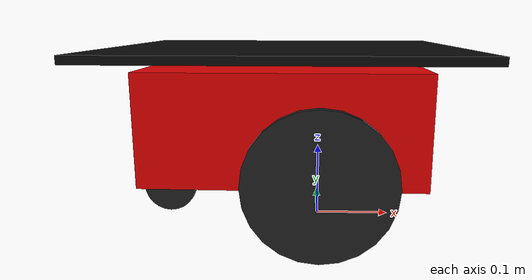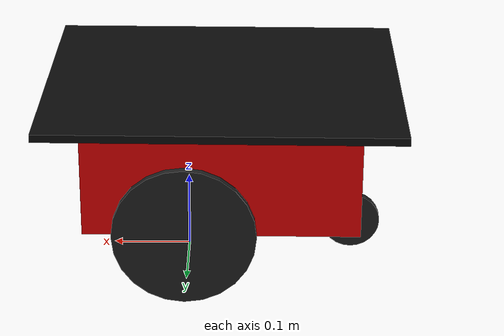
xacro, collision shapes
<?xml version="1.0"?>

<robot name="pioneer3dx"
	xmlns:sensor="http://playerstage.sourceforge.net/gazebo/xmlschema/#sensor"
	xmlns:controller="http://playerstage.sourceforge.net/gazebo/xmlschema/#controller"
	xmlns:interface="http://playerstage.sourceforge.net/gazebo/xmlschema/#interface"
	xmlns:xacro="http://ros.org/wiki/xacro">

<!-- Chassis -->
	<link name="base_link">
		<inertial>
			<mass value="3.5"/>
			<origin xyz="-0.05 0 0"/>
			<inertia ixx="1" ixy="0" ixz="0"
				 iyy="1" iyz="0"
				 izz="1"/>
		</inertial>
		<visual name="base_visual">
			<origin xyz="-0.045 0 0.148" rpy="0 0 0"/>
			<geometry name="pioneer_geom">
				<mesh filename="package://p2os_urdf/meshes/p3dx_meshes/chassis.stl"/>
			</geometry>
			<material name="ChassisRed">
				<color rgba="0.851 0.0 0.0 1.0"/>
			</material>
		</visual>
		<collision>
			<origin xyz="-0.045 0 0.145" rpy="0 0 0"/>
				<geometry>
					<box size="0.35 0.25 0.14"/>
				</geometry>
		</collision>
	</link>

	<gazebo reference="base_link">
		<material value="Gazebo/Red"/>
	</gazebo>

<!-- Top -->
	<link name="top_plate">
		<inertial>
			<mass value="0.01"/>
			<origin xyz="0 0 0"/>
			<inertia ixx="1" ixy="0" ixz="0"
				 iyy="1" iyz="0"
 				izz="1"/>
		</inertial>
		<visual name="base_visual">
			<origin xyz="0 0 0" rpy="0 0 0"/>
			<geometry name="top_geom">
				<mesh filename="package://p2os_urdf/meshes/p3dx_meshes/top.stl"/>
			</geometry>

			<material name="TopBlack">
					<color rgba="0.038 0.038 0.038 1.0"/>
			</material>
		</visual>
		<collision>
			<origin xyz="0.0 0 0" rpy="0 0 0"/>
			<geometry name="pioneer_geom">
				<box size="0.45 0.38 0.01"/>
			</geometry>
		</collision>
	</link>
	<gazebo reference="top_plate">
		<material value="Gazebo/Black"/>
	</gazebo>

	<joint name="base_top_joint" type="fixed">
		<origin xyz="-0.045 0 0.234" rpy="0 0 0"/>
		<parent link="base_link"/>
		<child link="top_plate"/>
	</joint>

<!-- Swivel -->
	<link name="swivel">
		<inertial>
			<mass value="0.1"/>
			<origin xyz="0 0 0"/>
			<inertia ixx="0.01" ixy="0" ixz="0"
				 iyy="0.01" iyz="0" izz="0.01"/>
  	 	</inertial>
	<visual name="base_visual">
		<origin xyz="0 0 0" rpy="0 0 0"/>
		<geometry name="pioneer_geom">
			<mesh filename="package://p2os_urdf/meshes/p3dx_meshes/swivel.stl"/>
		</geometry>
		<material name="swivel">
			<color rgba="0.5 0.5 0.5 1"/>
		</material>
	</visual>
	<collision>
		<origin xyz="0 0 0" rpy="0 0 0"/>
		<geometry>
			<box size="0 0 0"/>
		</geometry>
	</collision>
	</link>
	<gazebo reference="swivel">
		<material value="Gazebo/Grey"/>
	</gazebo>

 	<joint name="base_swivel_joint" type="continuous">
		<origin xyz="-0.185 0 0.055" rpy="0 0 0"/>
		<axis xyz="0 0 1"/>
		<anchor xyz="0 0 0"/>
    <limit effort="100" velocity="100" k_velocity="0" />
    <joint_properties damping="0.0" friction="0.0" />
		<parent link="base_link"/>
		<child link="swivel"/>
	</joint>

<!-- Center Wheel + Hubcap -->
	<link name="center_hubcap">
		<inertial>
			<mass value="0.01"/>
			<origin xyz="0 0 0"/>
			<inertia ixx="0.012411765597" ixy="-0.000711733678" ixz="0.00050272983"
				 iyy="0.015218160428" iyz="-0.000004273467" izz="0.011763977943"/>
  	 	</inertial>
	<visual name="base_visual">
		<origin xyz="0 0 0" rpy="0 0 0"/>
		<geometry name="pioneer_geom">
			<mesh filename="package://p2os_urdf/meshes/p3dx_meshes/center_hubcap.stl"/>
		</geometry>
		<material name="swivel">
			<color rgba="0.5 0.5 0.5 1"/>
		</material>
	</visual>
	<collision>
		<origin xyz="0 0 0" rpy="0 0 0"/>
		<geometry>
			<box size="0 0 0"/>
		</geometry>
	</collision>
	</link>
		<gazebo reference="center_hubcap">
		<material value="Gazebo/Grey"/>
	</gazebo>

	<joint name="swivel_hubcap_joint" type="continuous">
		<origin xyz="-0.026 0 -0.016" rpy="0 0 0"/>
		<axis xyz="0 1 0"/>
		<anchor xyz="0 0 0"/>
    <limit effort="100" velocity="100" k_velocity="0" />
    <joint_properties damping="0.0" friction="0.0" />
	<parent link="swivel"/>
		<child link="center_hubcap"/>
	</joint>

	<link name="center_wheel">
		<inertial>
			<mass value="0.1"/>
			<origin xyz="0 0 0"/>
			<inertia ixx="0.012411765597" ixy="-0.000711733678" ixz="0.00050272983"
				 iyy="0.015218160428" iyz="-0.000004273467" izz="0.011763977943"/>
  	 	</inertial>
	<visual name="base_visual">
		<origin xyz="0 0 0" rpy="0 0 0"/>
		<geometry name="pioneer_geom">
			<mesh filename="package://p2os_urdf/meshes/p3dx_meshes/center_wheel.stl"/>
		</geometry>
		<material name="WheelBlack">
			<color rgba="0.117 0.117 0.117 1"/>
		</material>
	</visual>
	<collision>
		<origin xyz="0 0 0" rpy="${-3.1415927/2.0} 0 0"/>
		<geometry>
			<cylinder radius="0.0375" length="0.01"/>
		</geometry>
	</collision>
	</link>

	<joint name="center_wheel_joint" type="fixed">
		<origin xyz="-0.0035 0 -0.001" rpy="0 0 0"/>
		<parent link="center_hubcap"/>
		<child link="center_wheel"/>
	</joint>
	<gazebo reference="center_wheel">
		<material value="Gazebo/Black"/>
    <elem key="mu1" value="50.0" />
    <elem key="mu2" value="50.0" />
    <elem key="kp"  value="100000000.0" />
    <elem key="kd"  value="1.0" />
	</gazebo>

<!-- Right/Left Hubcap + Wheel -->
<xacro:macro name="p3dx_wheel" params="suffix parent reflect">
	<link name="p3dx_${suffix}_wheel">
		<inertial>
			<mass value="0.5"/>
			<origin xyz="0 0 0"/>
			<inertia ixx="0.012411765597" ixy="0" ixz="0"
				 iyy="0.015218160428" iyz="0" izz="0.011763977943"/>
  	 	</inertial>
		<visual name="base_visual">
			<origin xyz="0 0 0" rpy="0 0 0"/>
			<geometry name="pioneer_geom">
				<mesh filename="package://p2os_urdf/meshes/p3dx_meshes/${suffix}_wheel.stl"/>
			</geometry>
			<material name="WheelBlack">
				<color rgba="0.117 0.117 0.117 1"/>
			</material>
		</visual>
		<collision>
			<origin xyz="0 0 0" rpy="${-3.1415927/2} 0 0"/>
			<geometry>
				<cylinder radius="0.09" length="0.01"/>
			</geometry>
		</collision>
	</link>

	<joint name="base_${suffix}_wheel_joint" type="fixed">
		<origin xyz="0 0 0" rpy="0 0 0"/>

		<parent link="p3dx_${suffix}_hubcap"/>
		<child link="p3dx_${suffix}_wheel"/>
	</joint>

	<link name="p3dx_${suffix}_hubcap">
		<inertial>
			<mass value="0.01"/>
			<origin xyz="0 0 0"/>
			<inertia ixx="0.012411765597" ixy="0" ixz="0"
				 iyy="0.015218160428" iyz="0" izz="0.011763977943"/>
  	 	</inertial>
	<visual name="base_visual">
		<origin xyz="0 0 0" rpy="0 0 0"/>
		<geometry name="pioneer_geom">
			<mesh filename="package://p2os_urdf/meshes/p3dx_meshes/${suffix}_hubcap.stl"/>
		</geometry>
		<material name="HubcapYellow">
			<color rgba="1.0 0.811 0.151 1.0"/>
		</material>
	</visual>
	<collision>
		<origin xyz="0 0 0" rpy="0 0 0"/>
		<geometry>
			<box size="0 0 0"/>
		</geometry>
	</collision>
	</link>

  <transmission type="SimpleTransmission" name="${parent}_${suffix}_wheel_trans">
		<actuator name="base_${suffix}_wheel_motor" />
    <joint name="base_${suffix}_hubcap_joint" />
    <mechanicalReduction>${reflect * 624/35 * 80/19}</mechanicalReduction>
  </transmission>

	<joint name="base_${suffix}_hubcap_joint" type="continuous">
		<axis xyz="0 1 0"/>
		<anchor xyz="0 0 0"/>
    <limit effort="100" velocity="100" />
    <joint_properties damping="0.0" friction="0.0" />
		<origin xyz="0 ${reflect*0.158} 0.091" rpy="0 0 0"/>
		<parent link="base_link"/>
		<child link="p3dx_${suffix}_hubcap"/>
	</joint>

	<gazebo reference="p3dx_${suffix}_wheel">
			<material value="Gazebo/Black"/>
      <elem key="mu1" value="0.5" />
      <elem key="mu2" value="50.0" />
      <elem key="kp"  value="100000000.0" />
      <elem key="kd"  value="1.0" />
	</gazebo>

</xacro:macro>

<xacro:p3dx_wheel suffix="left" parent="base_link" reflect="1"/>
<xacro:p3dx_wheel suffix="right" parent="base_link" reflect="-1"/>

<!-- Front + Back Sonar -->
	<link name="front_sonar">
		<inertial>
			<mass value="0"/>
			<origin xyz="0 0 0"/>
			<inertia ixx="1" ixy="0" ixz="0"
				 iyy="1" iyz="0" izz="1"/>
		</inertial>
		<visual name="base_visual">
			<origin xyz="0 0 0" rpy="0 0 0"/>
			<geometry name="pioneer_geom">
				<mesh filename="package://p2os_urdf/meshes/p3dx_meshes/front_sonar.stl"/>
			</geometry>
			<material name="SonarYellow">
				<color rgba="0.715 0.583 0.210 1.0"/>
			</material>
		</visual>
		<collision>
			<origin xyz="0 0 0" rpy="0 0 0"/>
			<geometry>
				<box size="0 0 0"/>
			</geometry>
		</collision>
	</link>

	<joint name="base_front_joint" type="fixed">
		<origin xyz="-0.198 0 0.208" rpy="0 0 0"/>
		<parent link="base_link"/>
		<child link="front_sonar"/>
	</joint>

	<link name="back_sonar">
		<inertial>
			<mass value="0"/>
			<origin xyz="0 0 0"/>
			<inertia ixx="1" ixy="0" ixz="0"
				 iyy="1" iyz="0" izz="1"/>
		</inertial>
		<visual name="base_visual">
			<origin xyz="0 0 0" rpy="0 0 0"/>
			<geometry name="pioneer_geom">
				<mesh filename="package://p2os_urdf/meshes/p3dx_meshes/back_sonar.stl"/>
			</geometry>
			<material name="SonarYellow">
				<color rgba="0.715 0.583 0.210 1.0"/>
			</material>
		</visual>
		<collision>
			<origin xyz="0 0 0" rpy="0 0 0"/>
			<geometry>
				<box size="0 0 0"/>
			</geometry>
		</collision>
	</link>

	<joint name="base_back_joint" type="fixed">
		<origin xyz="0.109 0 0.209" rpy="0 0 0"/>
		<parent link="base_link"/>
		<child link="back_sonar"/>
	</joint>

  <gazebo>
    <controller:differential_position2d name="controller1">
      <update>100</update>
      <leftJoint>base_right_hubcap_joint</leftJoint>
      <rightJoint>base_left_hubcap_joint</rightJoint>
      <wheelSeparation>0.39</wheelSeparation>
      <wheelDiameter>0.15</wheelDiameter>
      <torque>5</torque>

      <interface:position name="position_iface_0"/>
    </controller:differential_position2d>

    <controller:gazebo_ros_p3d name="p3d_base_controller" plugin="libgazebo_ros_p3d.so">
      <alwaysOn>true</alwaysOn>
      <updateRate>100.0</updateRate>
      <bodyName>base_link</bodyName>
      <topicName>base_pose_ground_truth</topicName>
      <gaussianNoise>0.01</gaussianNoise>
      <frameName>map</frameName>
      <xyzOffsets>0 0 0</xyzOffsets> <!-- initialize odometry for fake localization-->
      <rpyOffsets>0 0 0</rpyOffsets>
      <interface:position name="p3d_base_position"/>
    </controller:gazebo_ros_p3d>

    <controller:gazebo_ros_controller_manager name="gazebo_ros_controller_manager" plugin="libgazebo_ros_controller_manager.so">
      <alwaysOn>true</alwaysOn>
      <updateRate>1000.0</updateRate>
      <interface:audio name="gazebo_ros_controller_manager_dummy_iface" />
    </controller:gazebo_ros_controller_manager>
  </gazebo>

</robot>
